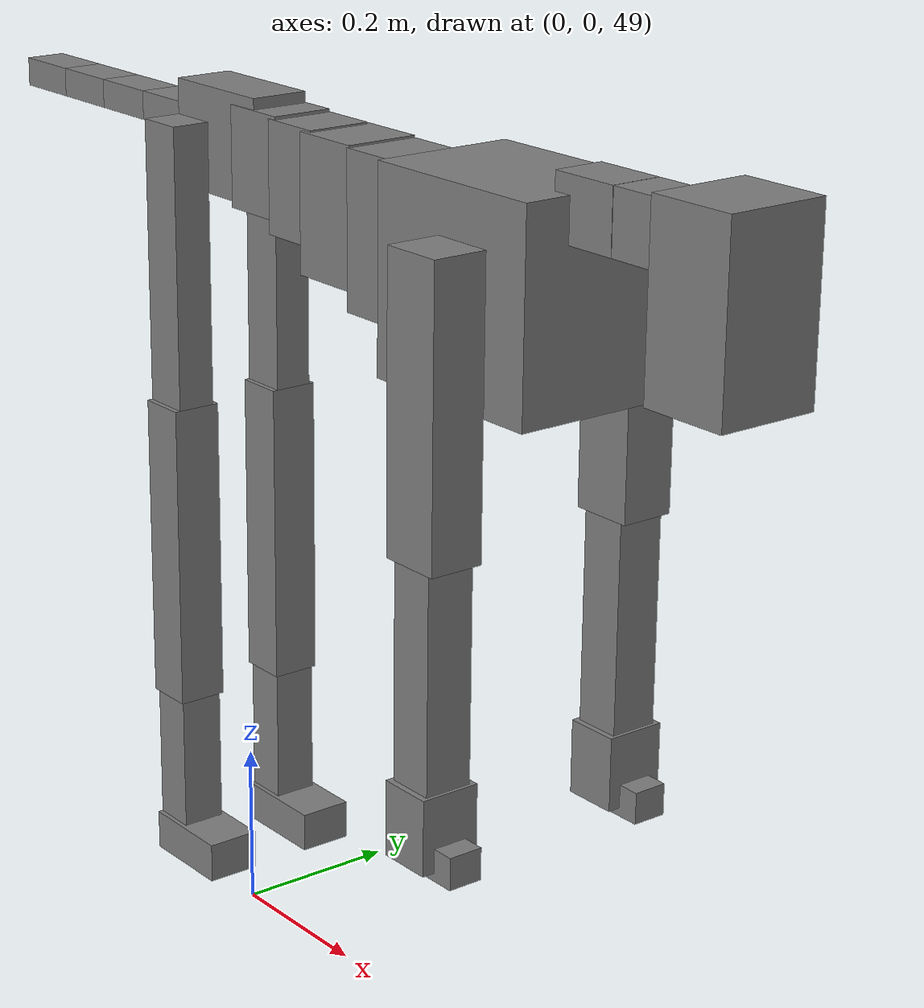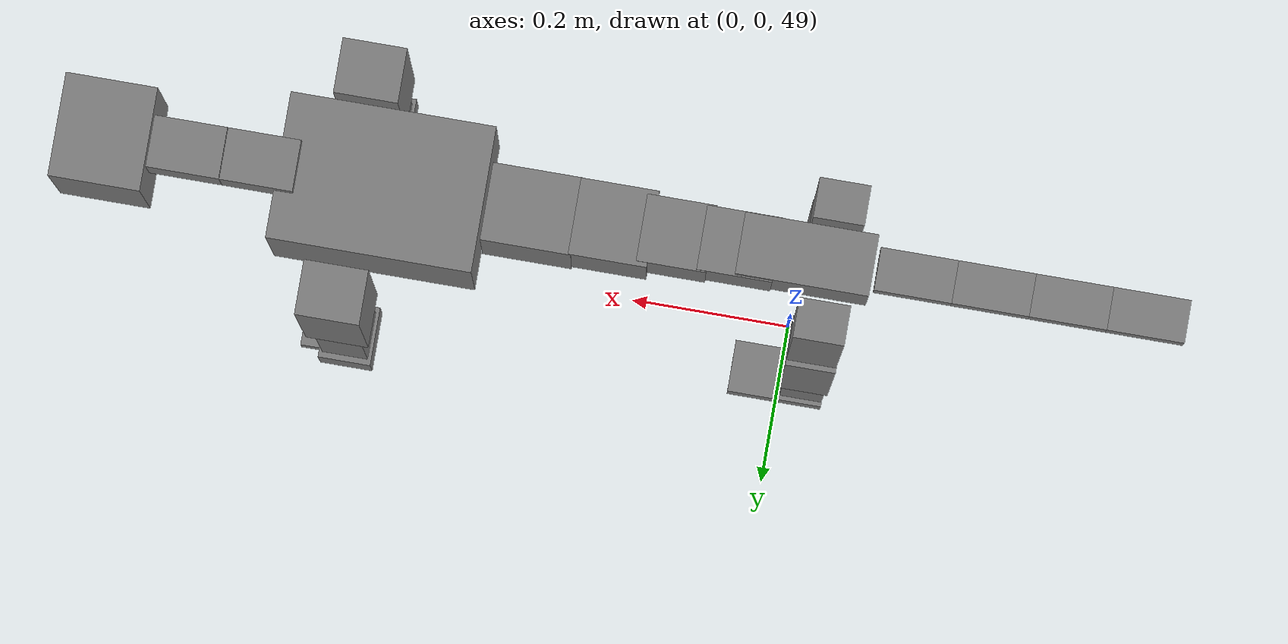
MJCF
<mujoco model="dog">

    <default>
        <joint armature="0.02" stiffness="1" damping="0.2" limited="true"/>
        <geom condim="3" friction="1 0.05 0.05" margin="0.01"/>
        <motor ctrllimited="true" ctrlrange="-1.0 1.0" forcelimited="true" gear="50"/>
    </default>

    <compiler inertiafromgeom="true" angle="radian"/>

    <option timestep="0.016" iterations="50" tolerance="1e-10" solver="Newton" jacobian="dense" cone="pyramidal"/>

    <size nconmax="20000" njmax="60000" nstack="5000000"/>
    <visual>
        <map force="0.1" zfar="30"/>
        <rgba haze="0.15 0.25 0.35 1"/>
        <quality shadowsize="2048"/>
        <global offwidth="800" offheight="800"/>
    </visual>

    <asset>
        <texture type="skybox" builtin="gradient" rgb1="0.3 0.5 0.7" rgb2="0 0 0" width="512" height="512"/>
        <texture name="texplane" type="2d" builtin="checker" rgb1=".2 .3 .4" rgb2=".1 0.15 0.2" width="512" height="512"
                 mark="cross" markrgb=".8 .8 .8"/>
        <texture name="texgeom" type="cube" builtin="flat" mark="cross" width="127" height="1278" rgb1="0.8 0.6 0.4"
                 rgb2="0.8 0.6 0.4" markrgb="1 1 1" random="0.01"/>

        <material name="matplane" reflectance="0.3" texture="texplane" texrepeat="1 1" texuniform="true"/>
        <material name="matgeom" texture="texgeom" texuniform="true" rgba="0.8 0.6 .4 1"/>
    </asset>

    <worldbody>
        <geom name="floor" pos="0 0 0" size="0 0 .25" type="plane" material="matplane" condim="3"/>

        <light directional="false" diffuse=".2 .2 .2" specular="0 0 0" pos="0 0 5" dir="0 0 -1" castshadow="false"/>
        <light mode="targetbodycom" target="torso" directional="false" diffuse=".8 .8 .8" specular="0.3 0.3 0.3"
               pos="0 0 4.0" dir="0 0 -1"/>

        <body name="root" pos="0 0 50">
            <freejoint name="root_1"/>
            <geom type="box" pos="0 0 -0.02" size="0.0774  0.0358  0.063" density="2030"/>

            <body name="spine1" pos="0.054 0 0">
                <joint name="spine1_y" axis="0 1 0" range="0 0.7" limited="true"/>
                <geom type="box" pos="0.02375 0 -0.03" size="0.04375  0.0375  0.05985" density="2030"/>

                <body name="spine2" pos="0.0612 0 0">
                    <joint name="spine2_y" axis="0 1 0" range="-0.15 0.15" limited="true"/>
                    <geom type="box" pos="0.03555  0  -0.04" size="0.04055  0.039  0.06615" density="2030"/>

                    <body name="spine3" pos="0.0730 0 0">
                        <joint name="spine3_y" axis="0 1 0" range="-0.15 0.15" limited="true"/>
                        <geom type="box" pos="0.03555  0  -0.057" size="0.04555  0.0445  0.081" density="2030"/>

                        <body name="spine4" pos="0.0780 0 0">
                            <joint name="spine4_y" axis="0 1 0" range="-0.15 0.15" limited="true"/>
                            <geom type="box" pos="0.05265  0  -0.07" size="0.05265  0.045  0.09135" density="2030"/>

                            <body name="torso" pos="0.1082 0 0">
                                <joint name="torso_y" axis="0 1 0" range="-0.15 0.15" limited="true"/>
                                <geom type="box" pos="0.11925  0  -0.085" size="0.11925  0.085  0.11745"
                                      density="2030"/>

                                <body name="neck1" pos="0.2160  0   0.0180">
                                    <joint name="neck1_y" axis="0 1 0" range="-1.2  -1" limited="true"/>
                                    <geom type="box" pos="0.0423  0  0" size="0.0423  0.03  0.036" density="2325"/>

                                    <body name="neck2" pos="0.0853  0  0">
                                        <joint name="neck2_y" axis="0 1 0" range="0.1  0" limited="true"/>
                                        <geom type="box" pos="0.0423  0  0" size="0.0423  0.03  0.036" density="2325"/>

                                        <body name="head" pos="0.0853  0  0">
                                            <joint name="head_y" axis="0 1 0" range="-0.3  -0.2" limited="true"/>
                                            <geom type="box" pos="0.0531  0  -0.055" size="0.0531  0.06  0.1044"
                                                  density="4030"/>

                                        </body>
                                    </body>
                                </body>

                                <body name="front_shoulder" pos="0.156  0   -0.0480">
                                    <joint name="front_shoulder_y" axis="0 1 0" range="-1 1.5" limited="true"/>
                                    <geom type="box" pos="0 0.13 -0.1389" size="0.0377  0.0322  0.1655" density="1158"/>
                                    <geom type="box" pos="0 -0.13 -0.1389" size="0.0377  0.0322  0.1655"
                                          density="1158"/>

                                    <body name="front_elbow" pos="0  0  -0.2778">
                                        <joint name="front_elbow_y" axis="0 1 0" range="-2 0" limited="true"/>
                                        <geom type="box" pos="0 0.13 -0.1444" size="0.0282  0.0288  0.1444"
                                              density="1081"/>
                                        <geom type="box" pos="0 -0.13 -0.1444" size="0.0282  0.0288  0.1444"
                                              density="1081"/>

                                        <body name="front_wrist" pos="0  0  -0.2888">
                                            <joint name="front_wrist_y" axis="0 1 0" range="-0.2 0" limited="true"/>
                                            <geom type="box" pos="0 0.13 -0.0307" size="0.0324  0.0360  0.0439"
                                                  density="1664"/>
                                            <geom type="box" pos="0 -0.13 -0.0307" size="0.0324  0.0360  0.0439"
                                                  density="1664"/>

                                            <body name="front_finger_end" pos="0  0  -0.0614">
                                                <joint name="front_finger_y" axis="0 1 0" range="-0.4 1"
                                                       limited="true"/>
                                                <geom type="box" pos="0.0208  0.13  -0.0039"
                                                      size="0.0382  0.0208  0.0189" density="1515"/>
                                                <geom type="box" pos="0.0208  -0.13  -0.0039"
                                                      size="0.0382  0.0208  0.0189" density="1515"/>

                                            </body>

                                        </body>
                                    </body>
                                </body>

                            </body>
                        </body>
                    </body>
                </body>
            </body>

            <body name="back_hip" pos="-0.03 0 -0.018">
                <joint name="back_hip_y" axis="0 1 0" range="-1.5 0.3" limited="true"/>
                <geom type="box" pos="0 0.07 -0.1658" size="0.0299  0.0234  0.1886" density="1154"/>
                <geom type="box" pos="0 -0.07 -0.1658" size="0.0299  0.0234  0.1886" density="1154"/>

                <body name="back_knee" pos="0  0  -0.3316">
                    <joint name="back_knee_y" axis="0 1 0" range="0 2.8" limited="true"/>
                    <geom type="box" pos="0 0.07 -0.1715" size="0.0303  0.0299  0.1871" density="1227"/>
                    <geom type="box" pos="0 -0.07 -0.1715" size="0.0303  0.0299  0.1871" density="1227"/>

                    <body name="back_ankle" pos="0  0  -0.3430">
                        <joint name="back_ankle_y" axis="0 1 0" range="-2.2 0" limited="true"/>
                        <geom type="box" pos="0 0.07 -0.0986" size="0.0267  0.0267  0.1099" density="1284"/>
                        <geom type="box" pos="0 -0.07 -0.0986" size="0.0267  0.0267  0.1099" density="1284"/>

                        <body name="back_toe_end" pos="0  0  -0.1973">
                            <joint name="back_toe_y" axis="0 1 0" range="-0.4 1" limited="true"/>
                            <geom type="box" pos="0.0325  0.07  -0.0092" size="0.0595  0.0325  0.0242" density="1515"/>
                            <geom type="box" pos="0.0325  -0.07  -0.0092" size="0.0595  0.0325  0.0242" density="1515"/>

                        </body>
                    </body>
                </body>
            </body>

            <body name="tail1" pos="-0.074 0 -0.006">
                <joint name="tail1_y" axis="0 1 0" range="-0.2 0.2" limited="true"/>
                <geom type="box" pos="-0.0536  0  0" size="0.045  0.025  0.0175" density="1587"/>

                <body name="tail2" pos="-0.09 0 0">
                    <joint name="tail2_y" axis="0 1 0" range="-0.2 0.2" limited="true"/>
                    <geom type="box" pos="-0.0536  0  0" size="0.045  0.025  0.0175" density="1587"/>

                    <body name="tail3" pos="-0.09 0 0">
                        <joint name="tail3_y" axis="0 1 0" range="-0.2 0.2" limited="true"/>
                        <geom type="box" pos="-0.0536  0  0" size="0.045  0.025  0.0175" density="1587"/>

                        <body name="tail4" pos="-0.09 0 0">
                            <joint name="tail4_y" axis="0 1 0" range="-0.2 0.2" limited="true"/>
                            <geom type="box" pos="-0.0536  0  0" size="0.045  0.025  0.0175" density="1587"/>

                        </body>
                    </body>
                </body>
            </body>
        </body>
    </worldbody>

    <actuator>
        <motor joint="spine1_y" forcerange="-150 150     "/>
        <motor joint="spine2_y" forcerange="-150 150     "/>
        <motor joint="spine3_y" forcerange="-150 150     "/>
        <motor joint="spine4_y" forcerange="-150 150     "/>
        <motor joint="torso_y" forcerange="-150 150     "/>
        <motor joint="neck1_y" forcerange="-100 100       "/>
        <motor joint="neck2_y" forcerange="-100 100       "/>
        <motor joint="head_y" forcerange="-150 150       "/>
        <motor joint="front_shoulder_y" forcerange="-197.87 116.90"/>
        <motor joint="front_elbow_y" forcerange="-130.68 178.66"/>
        <motor joint="front_wrist_y" forcerange="-139.30 148.72"/>
        <motor joint="front_finger_y" forcerange="-47.07 24.07"/>
        <motor joint="back_hip_y" forcerange="-274.69 237.77"/>
        <motor joint="back_knee_y" forcerange="-350.29 284.29"/>
        <motor joint="back_angle_y" forcerange="-95.23 231.83"/>
        <motor joint="back_toe_y" forcerange="-97.96 81.64"/>
        <motor joint="tail1_y" forcerange="-50 50     "/>
        <motor joint="tail2_y" forcerange="-50 50     "/>
        <motor joint="tail3_y" forcerange="-50 50     "/>
        <motor joint="tail4_y" forcerange="-50 50     "/>
    </actuator>
</mujoco>
